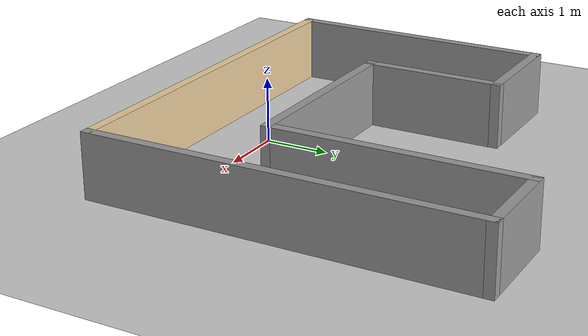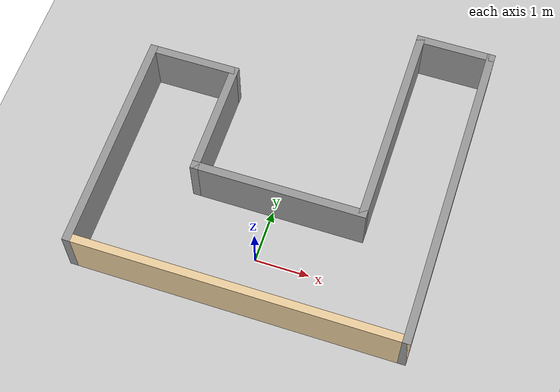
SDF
<sdf version="1.6">
 <world name="default">
  <light name="sun" type="directional">
   <pose>0 0 10 0 -0 0</pose>
   <diffuse>0.8 0.8 0.8 1</diffuse>
   <specular>0.2 0.2 0.2 1</specular>
   <attenuation>
    <range>1000</range>
    <constant>0.9</constant>
    <linear>0.01</linear>
    <quadratic>0.001</quadratic>
   </attenuation>
   <direction>-0.5 0.1 -0.9</direction>
  </light>
  <model name="ground_plane">
   <static>1</static>
   <link name="link">
    <collision name="collision">
     <geometry><plane><normal>0 0 1</normal><size>100 100</size></plane></geometry>
     <surface><friction><ode><mu>100</mu><mu2>50</mu2></ode></friction></surface>
    </collision>
    <visual name="visual">
     <cast_shadows>0</cast_shadows>
     <geometry><plane><normal>0 0 1</normal><size>100 100</size></plane></geometry>
     <material>
      <script><uri>file://media/materials/scripts/gazebo.material</uri><name>Gazebo/Grey</name></script>
     </material>
    </visual>
   </link>
  </model>
  <gravity>0 0 -9.8</gravity>
  <magnetic_field>6e-06 2.3e-05 -4.2e-05</magnetic_field>
  <atmosphere type="adiabatic"/>
  <physics name="default_physics" default="0" type="ode">
   <max_step_size>0.001</max_step_size>
   <real_time_factor>1</real_time_factor>
   <real_time_update_rate>1000</real_time_update_rate>
  </physics>
  <scene><ambient>0.4 0.4 0.4 1</ambient><background>0.7 0.7 0.7 1</background><shadows>1</shadows></scene>
  <spherical_coordinates>
   <surface_model>EARTH_WGS84</surface_model>
   <latitude_deg>0</latitude_deg>
   <longitude_deg>0</longitude_deg>
   <elevation>0</elevation>
   <heading_deg>0</heading_deg>
  </spherical_coordinates>
  <model name="Untitled">
   <pose>-0.025 1.925 0 0 -0 0</pose>
   <link name="Wall_0">
    <collision name="Wall_0_Collision">
     <geometry><box><size>6.15 0.15 1</size></box></geometry>
     <pose>0 0 0.5 0 -0 0</pose>
    </collision>
    <visual name="Wall_0_Visual">
     <pose>0 0 0.5 0 -0 0</pose>
     <geometry><box><size>6.15 0.15 1</size></box></geometry>
     <material>
      <script><uri>file://media/materials/scripts/gazebo.material</uri><name>Gazebo/Grey</name></script>
      <ambient>0.921569 0.807843 0.615686 1</ambient>
     </material>
     <meta><layer>0</layer></meta>
    </visual>
    <pose>0.025 -2.925 0 0 -0 0</pose>
   </link>
   <link name="Wall_10">
    <collision name="Wall_10_Collision">
     <geometry><box><size>4.25 0.15 1</size></box></geometry>
     <pose>0 0 0.5 0 -0 0</pose>
    </collision>
    <visual name="Wall_10_Visual">
     <pose>0 0 0.5 0 -0 0</pose>
     <geometry><box><size>4.25 0.15 1</size></box></geometry>
     <material>
      <script><uri>file://media/materials/scripts/gazebo.material</uri><name>Gazebo/Grey</name></script>
      <ambient>1 1 1 1</ambient>
     </material>
     <meta><layer>0</layer></meta>
    </visual>
    <pose>-3.025 -0.875 0 0 0 -1.5708</pose>
   </link>
   <link name="Wall_4">
    <collision name="Wall_4_Collision">
     <geometry><box><size>6 0.15 1</size></box></geometry>
     <pose>0 0 0.5 0 -0 0</pose>
    </collision>
    <visual name="Wall_4_Visual">
     <pose>0 0 0.5 0 -0 0</pose>
     <geometry><box><size>6 0.15 1</size></box></geometry>
     <material>
      <script><uri>file://media/materials/scripts/gazebo.material</uri><name>Gazebo/Grey</name></script>
      <ambient>1 1 1 1</ambient>
     </material>
     <meta><layer>0</layer></meta>
    </visual>
    <pose>3.025 0 0 0 -0 1.5708</pose>
   </link>
   <link name="Wall_5">
    <collision name="Wall_5_Collision">
     <geometry><box><size>1.5 0.15 1</size></box></geometry>
     <pose>0 0 0.5 0 -0 0</pose>
    </collision>
    <visual name="Wall_5_Visual">
     <pose>0 0 0.5 0 -0 0</pose>
     <geometry><box><size>1.5 0.15 1</size></box></geometry>
     <material>
      <script><uri>file://media/materials/scripts/gazebo.material</uri><name>Gazebo/Grey</name></script>
      <ambient>1 1 1 1</ambient>
     </material>
     <meta><layer>0</layer></meta>
    </visual>
    <pose>2.35 2.925 0 0 -0 3.14159</pose>
   </link>
   <link name="Wall_6">
    <collision name="Wall_6_Collision">
     <geometry><box><size>4 0.15 1</size></box></geometry>
     <pose>0 0 0.5 0 -0 0</pose>
    </collision>
    <visual name="Wall_6_Visual">
     <pose>0 0 0.5 0 -0 0</pose>
     <geometry><box><size>4 0.15 1</size></box></geometry>
     <material>
      <script><uri>file://media/materials/scripts/gazebo.material</uri><name>Gazebo/Grey</name></script>
      <ambient>1 1 1 1</ambient>
     </material>
     <meta><layer>0</layer></meta>
    </visual>
    <pose>1.675 1 0 0 0 -1.5708</pose>
   </link>
   <link name="Wall_7">
    <collision name="Wall_7_Collision">
     <geometry><box><size>3.25 0.15 1</size></box></geometry>
     <pose>0 0 0.5 0 -0 0</pose>
    </collision>
    <visual name="Wall_7_Visual">
     <pose>0 0 0.5 0 -0 0</pose>
     <geometry><box><size>3.25 0.15 1</size></box></geometry>
     <material>
      <script><uri>file://media/materials/scripts/gazebo.material</uri><name>Gazebo/Grey</name></script>
      <ambient>1 1 1 1</ambient>
     </material>
     <meta><layer>0</layer></meta>
    </visual>
    <pose>0.125 -0.925 0 0 -0 3.14159</pose>
   </link>
   <link name="Wall_8">
    <collision name="Wall_8_Collision">
     <geometry><box><size>2.25 0.15 1</size></box></geometry>
     <pose>0 0 0.5 0 -0 0</pose>
    </collision>
    <visual name="Wall_8_Visual">
     <pose>0 0 0.5 0 -0 0</pose>
     <geometry><box><size>2.25 0.15 1</size></box></geometry>
     <material>
      <script><uri>file://media/materials/scripts/gazebo.material</uri><name>Gazebo/Grey</name></script>
      <ambient>1 1 1 1</ambient>
     </material>
     <meta><layer>0</layer></meta>
    </visual>
    <pose>-1.425 0.125 0 0 -0 1.5708</pose>
   </link>
   <link name="Wall_9">
    <collision name="Wall_9_Collision">
     <geometry><box><size>1.75 0.15 1</size></box></geometry>
     <pose>0 0 0.5 0 -0 0</pose>
    </collision>
    <visual name="Wall_9_Visual">
     <pose>0 0 0.5 0 -0 0</pose>
     <geometry><box><size>1.75 0.15 1</size></box></geometry>
     <material>
      <script><uri>file://media/materials/scripts/gazebo.material</uri><name>Gazebo/Grey</name></script>
      <ambient>1 1 1 1</ambient>
     </material>
     <meta><layer>0</layer></meta>
    </visual>
    <pose>-2.225 1.175 0 0 -0 3.14159</pose>
   </link>
   <static>1</static>
  </model>
 </world>
</sdf>
